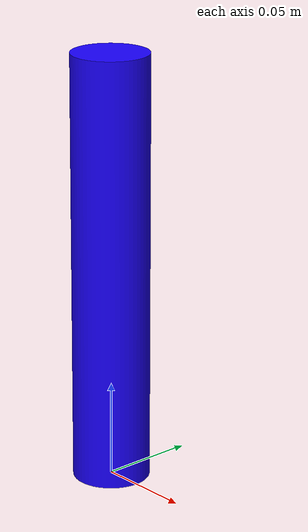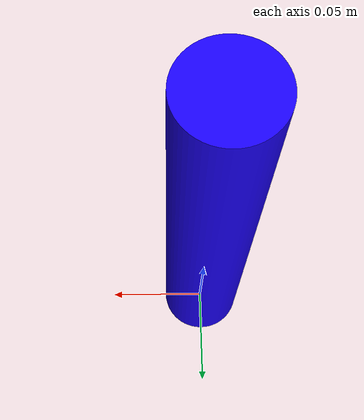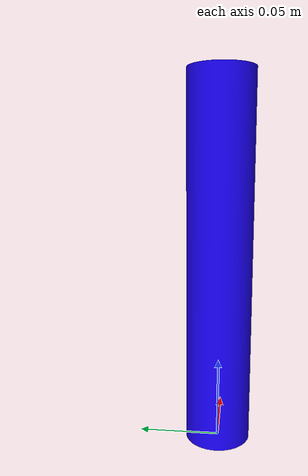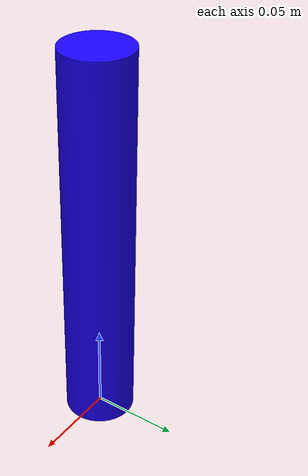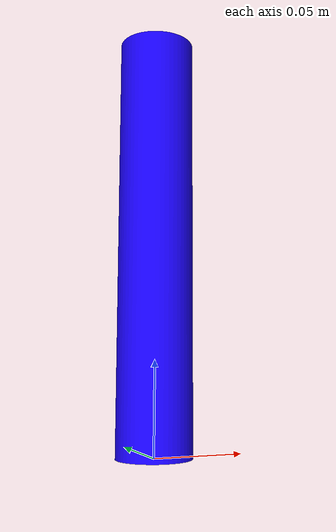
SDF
<sdf version="1.4">
  <model name="long_object">
    <pose>0 0 0 0 0 0</pose>
    <link name="link">
      <visual name="visual">
        <geometry>
          <mesh>
            <uri>model://long_object/meshes/long_object.stl</uri>
            <scale>0.001 0.001 0.001</scale>
          </mesh>
        </geometry>
        <material>
          <ambient>0.1 0 0.2 1</ambient> <!-- Purple Color -->
          <diffuse>0.1 0 1 1</diffuse>
          <specular>0.5 0.5 0.5 1</specular>
          <emissive>0 0 0 1</emissive>
        </material>
      </visual>
      <collision name="collision">
        <geometry>
          <mesh>
            <uri>model://long_object/meshes/long_object.stl</uri>
            <scale>0.001 0.001 0.001</scale>
          </mesh>
        </geometry>
      </collision>
    </link>
  </model>
</sdf>
